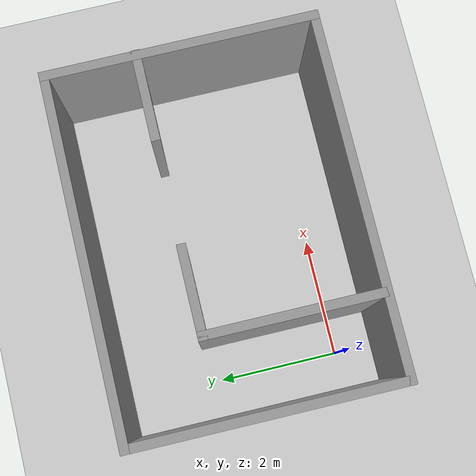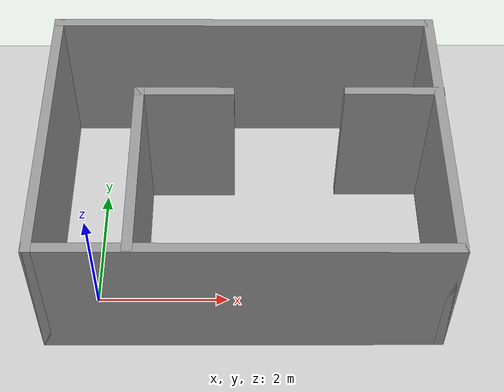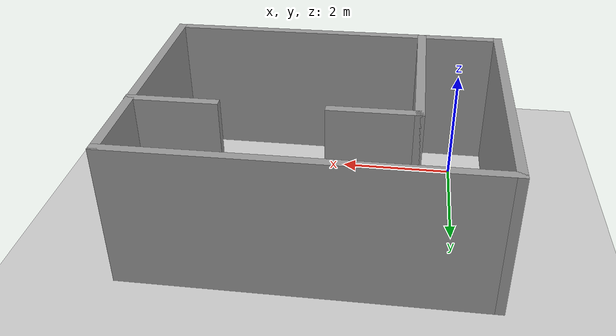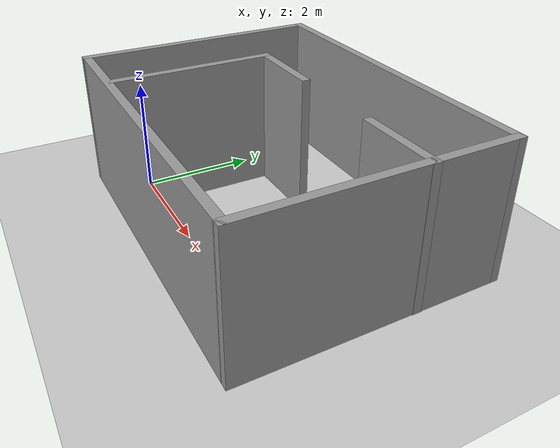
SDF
<sdf version="1.6">
 <world name="default">
  <light name="sun" type="directional">
   <pose>0 0 10 0 -0 0</pose>
   <diffuse>0.8 0.8 0.8 1</diffuse>
   <specular>0.1 0.1 0.1 1</specular>
   <attenuation>
    <range>1000</range>
    <constant>0.9</constant>
    <linear>0.01</linear>
    <quadratic>0.001</quadratic>
   </attenuation>
   <direction>-0.5 0.5 -1</direction>
  </light>
  <model name="ground_plane">
   <static>1</static>
   <link name="link">
    <collision name="collision">
     <geometry><plane><normal>0 0 1</normal><size>100 100</size></plane></geometry>
     <surface><friction><ode><mu>100</mu><mu2>50</mu2></ode></friction></surface>
    </collision>
    <visual name="visual">
     <cast_shadows>0</cast_shadows>
     <geometry><plane><normal>0 0 1</normal><size>100 100</size></plane></geometry>
     <material>
      <script><uri>file://media/materials/scripts/gazebo.material</uri><name>Gazebo/Grey</name></script>
     </material>
    </visual>
   </link>
  </model>
  <gravity>0 0 -9.8</gravity>
  <magnetic_field>6e-06 2.3e-05 -4.2e-05</magnetic_field>
  <atmosphere type="adiabatic"/>
  <physics name="default_physics" default="0" type="ode">
   <max_step_size>0.001</max_step_size>
   <real_time_factor>1</real_time_factor>
   <real_time_update_rate>1000</real_time_update_rate>
  </physics>
  <scene><ambient>0.4 0.4 0.4 1</ambient><background>0.7 0.7 0.7 1</background><shadows>1</shadows></scene>
  <spherical_coordinates>
   <surface_model>EARTH_WGS84</surface_model>
   <latitude_deg>0</latitude_deg>
   <longitude_deg>0</longitude_deg>
   <elevation>0</elevation>
   <heading_deg>0</heading_deg>
  </spherical_coordinates>
  <model name="project1_model">
   <pose>2.25561 1.45879 2.42824 3.14159 0.003804 -0</pose>
   <link name="Wall_22">
    <collision name="Wall_22_Collision">
     <geometry><box><size>6 0.15 2.5</size></box></geometry>
     <pose>0 0 1.25 0 -0 0</pose>
    </collision>
    <visual name="Wall_22_Visual">
     <pose>0 0 1.25 0 -0 0</pose>
     <geometry><box><size>6 0.15 2.5</size></box></geometry>
     <material>
      <script><uri>file://media/materials/scripts/gazebo.material</uri><name>Gazebo/Grey</name></script>
      <ambient>1 1 1 1</ambient>
     </material>
    </visual>
    <pose>-0.004423 2.175 0 0 -0 0</pose>
   </link>
   <link name="Wall_23">
    <collision name="Wall_23_Collision">
     <geometry><box><size>4.5 0.15 2.5</size></box></geometry>
     <pose>0 0 1.25 0 -0 0</pose>
    </collision>
    <visual name="Wall_23_Visual">
     <pose>0 0 1.25 0 -0 0</pose>
     <geometry><box><size>4.5 0.15 2.5</size></box></geometry>
     <material>
      <script><uri>file://media/materials/scripts/gazebo.material</uri><name>Gazebo/Grey</name></script>
      <ambient>1 1 1 1</ambient>
     </material>
    </visual>
    <pose>2.92058 0 0 0 0 -1.5708</pose>
   </link>
   <link name="Wall_24">
    <collision name="Wall_24_Collision">
     <geometry><box><size>6 0.15 2.5</size></box></geometry>
     <pose>0 0 1.25 0 -0 0</pose>
    </collision>
    <visual name="Wall_24_Visual">
     <pose>0 0 1.25 0 -0 0</pose>
     <geometry><box><size>6 0.15 2.5</size></box></geometry>
     <material>
      <script><uri>file://media/materials/scripts/gazebo.material</uri><name>Gazebo/Grey</name></script>
      <ambient>1 1 1 1</ambient>
     </material>
    </visual>
    <pose>-0.004423 -2.175 0 0 -0 3.14159</pose>
   </link>
   <link name="Wall_25">
    <collision name="Wall_25_Collision">
     <geometry><box><size>4.5 0.15 2.5</size></box></geometry>
     <pose>0 0 1.25 0 -0 0</pose>
    </collision>
    <visual name="Wall_25_Visual">
     <pose>0 0 1.25 0 -0 0</pose>
     <geometry><box><size>4.5 0.15 2.5</size></box></geometry>
     <material>
      <script><uri>file://media/materials/scripts/gazebo.material</uri><name>Gazebo/Grey</name></script>
      <ambient>1 1 1 1</ambient>
     </material>
    </visual>
    <pose>-2.92942 0 0 0 -0 1.5708</pose>
   </link>
   <link name="Wall_29">
    <collision name="Wall_29_Collision">
     <geometry><box><size>3 0.15 2.5</size></box></geometry>
     <pose>0 0 1.25 0 -0 0</pose>
    </collision>
    <visual name="Wall_29_Visual">
     <pose>0 0 1.25 0 -0 0</pose>
     <geometry><box><size>3 0.15 2.5</size></box></geometry>
     <material>
      <script><uri>file://media/materials/scripts/gazebo.material</uri><name>Gazebo/Grey</name></script>
      <ambient>1 1 1 1</ambient>
     </material>
    </visual>
    <pose>-1.57629 0.73779 0 0 0 -1.5708</pose>
   </link>
   <link name="Wall_31">
    <collision name="Wall_31_Collision">
     <geometry><box><size>1.5 0.15 2.5</size></box></geometry>
     <pose>0 0 1.25 0 -0 0</pose>
    </collision>
    <visual name="Wall_31_Visual">
     <pose>0 0 1.25 0 -0 0</pose>
     <geometry><box><size>1.5 0.15 2.5</size></box></geometry>
     <material>
      <script><uri>file://media/materials/scripts/gazebo.material</uri><name>Gazebo/Grey</name></script>
      <ambient>1 1 1 1</ambient>
     </material>
    </visual>
    <pose>-0.901293 -0.68721 0 0 -0 0</pose>
   </link>
   <link name="Wall_33">
    <collision name="Wall_33_Collision">
     <geometry><box><size>1.5 0.15 2.5</size></box></geometry>
     <pose>0 0 1.25 0 -0 0</pose>
    </collision>
    <visual name="Wall_33_Visual">
     <pose>0 0 1.25 0 -0 0</pose>
     <geometry><box><size>1.5 0.15 2.5</size></box></geometry>
     <material>
      <script><uri>file://media/materials/scripts/gazebo.material</uri><name>Gazebo/Grey</name></script>
      <ambient>1 1 1 1</ambient>
     </material>
    </visual>
    <pose>2.25442 -0.69982 0 0 -0 3.14159</pose>
   </link>
   <static>1</static>
  </model>
 </world>
</sdf>
